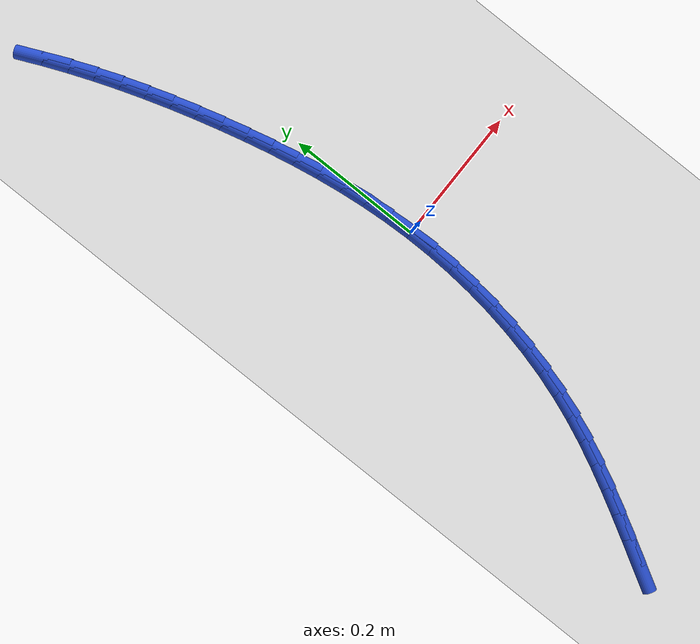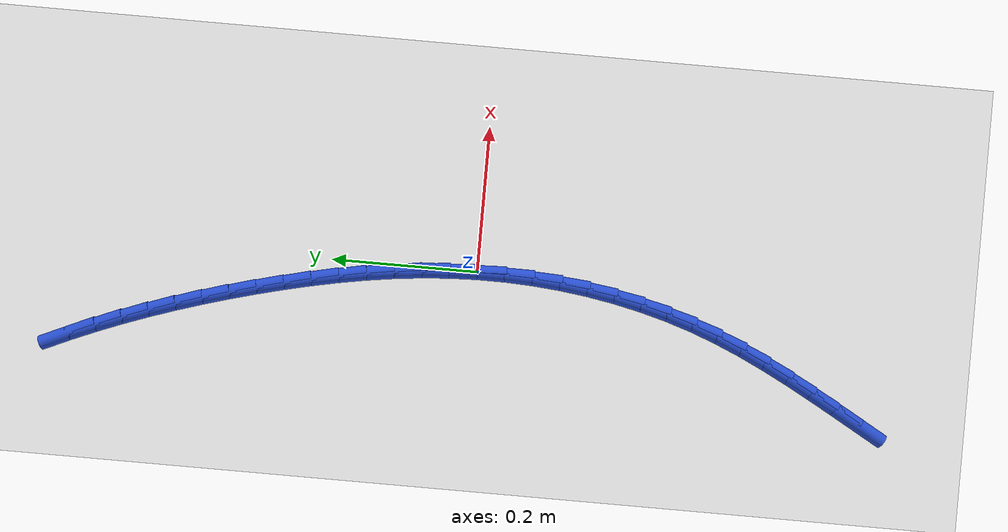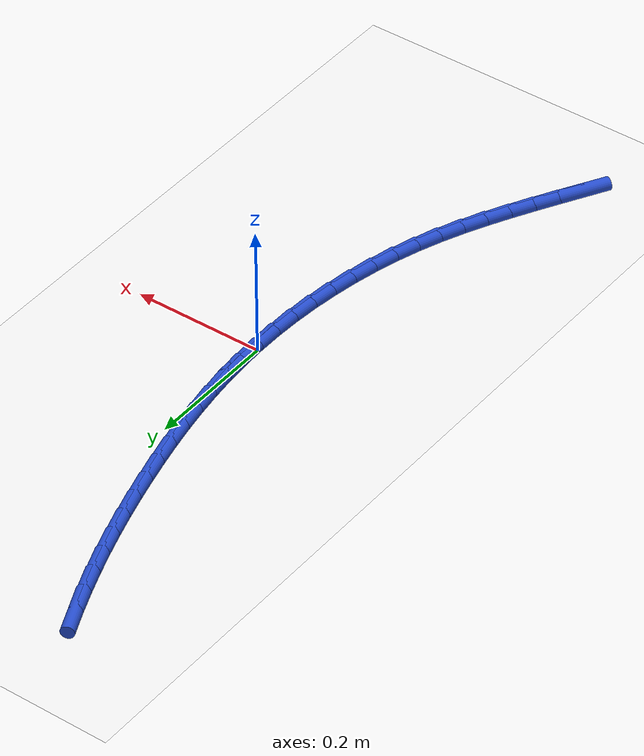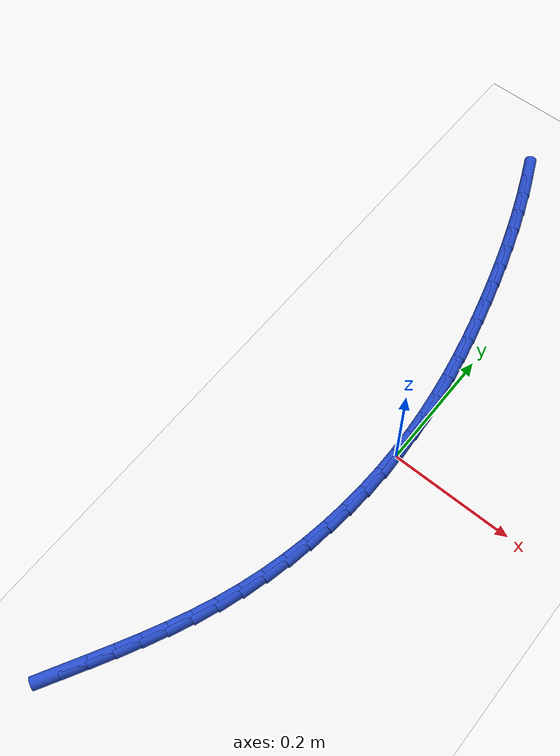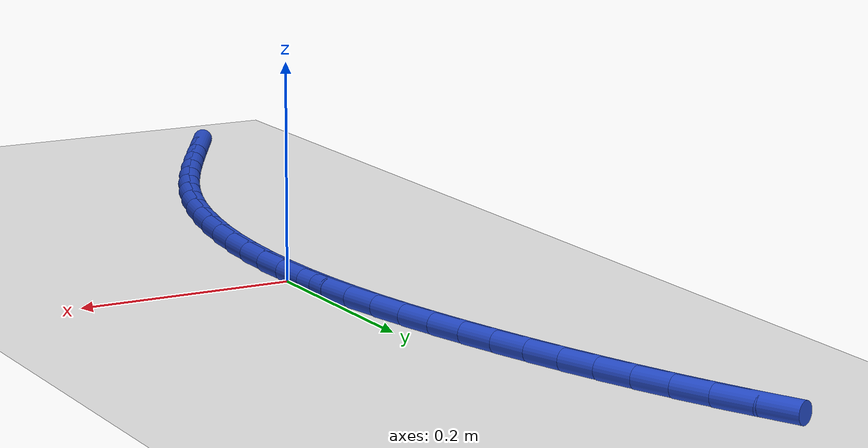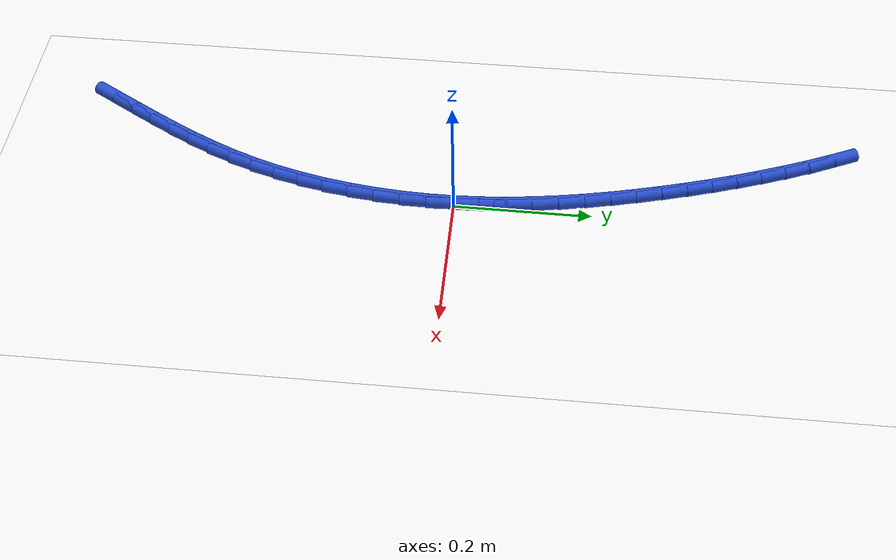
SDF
<sdf version="1.6">
 <world name="default">
  <model name="ground_plane">
   <static>1</static>
   <link name="link">
    <collision name="collision">
     <geometry><plane><normal>0 0 1</normal><size>100 100</size></plane></geometry>
     <surface><friction><ode><mu>100</mu><mu2>50</mu2></ode></friction></surface>
    </collision>
    <visual name="visual">
     <cast_shadows>0</cast_shadows>
     <geometry><plane><normal>0 0 1</normal><size>100 100</size></plane></geometry>
     <material>
      <script><uri>file://media/materials/scripts/gazebo.material</uri><name>Gazebo/WhiteGlow</name></script>
     </material>
    </visual>
   </link>
  </model>
  <model name="line">
   <link name="link_0">
    <pose>1.6479873021779667e-17 4.163336342344337e-17 0.01 0 1.57 -1.5317288120726327</pose>
    <collision name="collision">
     <geometry><cylinder><radius>0.01</radius><length>0.08</length></cylinder></geometry>
    </collision>
    <visual name="visual">
     <material>
      <script><name>Gazebo/Blue</name><uri>file://media/materials/scripts/gazebo.material</uri></script>
     </material>
     <geometry><cylinder><radius>0.01</radius><length>0.08</length></cylinder></geometry>
    </visual>
   </link>
   <link name="link_1">
    <pose>-0.0014899844834011112 0.03811930134167298 0.01 0 1.57 -1.4931282186608994</pose>
    <collision name="collision">
     <geometry><cylinder><radius>0.01</radius><length>0.08</length></cylinder></geometry>
    </collision>
    <visual name="visual">
     <material>
      <script><name>Gazebo/Blue</name><uri>file://media/materials/scripts/gazebo.material</uri></script>
     </material>
     <geometry><cylinder><radius>0.01</radius><length>0.08</length></cylinder></geometry>
    </visual>
   </link>
   <link name="link_2">
    <pose>-0.004442782700830832 0.07606098006140873 0.01 0 1.57 -1.4574138592589685</pose>
    <collision name="collision">
     <geometry><cylinder><radius>0.01</radius><length>0.08</length></cylinder></geometry>
    </collision>
    <visual name="visual">
     <material>
      <script><name>Gazebo/Blue</name><uri>file://media/materials/scripts/gazebo.material</uri></script>
     </material>
     <geometry><cylinder><radius>0.01</radius><length>0.08</length></cylinder></geometry>
    </visual>
   </link>
   <link name="link_3">
    <pose>-0.008741418622784745 0.11381108126218124 0.01 0 1.57 -1.4246214544214557</pose>
    <collision name="collision">
     <geometry><cylinder><radius>0.01</radius><length>0.08</length></cylinder></geometry>
    </collision>
    <visual name="visual">
     <material>
      <script><name>Gazebo/Blue</name><uri>file://media/materials/scripts/gazebo.material</uri></script>
     </material>
     <geometry><cylinder><radius>0.01</radius><length>0.08</length></cylinder></geometry>
    </visual>
   </link>
   <link name="link_4">
    <pose>-0.014268916219758475 0.1513556500469646 0.01 0 1.57 -1.3947576710390879</pose>
    <collision name="collision">
     <geometry><cylinder><radius>0.01</radius><length>0.08</length></cylinder></geometry>
    </collision>
    <visual name="visual">
     <material>
      <script><name>Gazebo/Blue</name><uri>file://media/materials/scripts/gazebo.material</uri></script>
     </material>
     <geometry><cylinder><radius>0.01</radius><length>0.08</length></cylinder></geometry>
    </visual>
   </link>
   <link name="link_5">
    <pose>-0.020908299462247606 0.18868073151873274 0.01 0 1.57 -1.3678085568128728</pose>
    <collision name="collision">
     <geometry><cylinder><radius>0.01</radius><length>0.08</length></cylinder></geometry>
    </collision>
    <visual name="visual">
     <material>
      <script><name>Gazebo/Blue</name><uri>file://media/materials/scripts/gazebo.material</uri></script>
     </material>
     <geometry><cylinder><radius>0.01</radius><length>0.08</length></cylinder></geometry>
    </visual>
   </link>
   <link name="link_6">
    <pose>-0.028542592320747764 0.2257723707804597 0.01 0 1.57 -1.3437473016160464</pose>
    <collision name="collision">
     <geometry><cylinder><radius>0.01</radius><length>0.08</length></cylinder></geometry>
    </collision>
    <visual name="visual">
     <material>
      <script><name>Gazebo/Blue</name><uri>file://media/materials/scripts/gazebo.material</uri></script>
     </material>
     <geometry><cylinder><radius>0.01</radius><length>0.08</length></cylinder></geometry>
    </visual>
   </link>
   <link name="link_7">
    <pose>-0.037054818765754546 0.2626166129351194 0.01 0 1.57 -1.3225411309745525</pose>
    <collision name="collision">
     <geometry><cylinder><radius>0.01</radius><length>0.08</length></cylinder></geometry>
    </collision>
    <visual name="visual">
     <material>
      <script><name>Gazebo/Blue</name><uri>file://media/materials/scripts/gazebo.material</uri></script>
     </material>
     <geometry><cylinder><radius>0.01</radius><length>0.08</length></cylinder></geometry>
    </visual>
   </link>
   <link name="link_8">
    <pose>-0.046328002767763554 0.29919950308568594 0.01 0 1.57 -1.3038874209098905</pose>
    <collision name="collision">
     <geometry><cylinder><radius>0.01</radius><length>0.08</length></cylinder></geometry>
    </collision>
    <visual name="visual">
     <material>
      <script><name>Gazebo/Blue</name><uri>file://media/materials/scripts/gazebo.material</uri></script>
     </material>
     <geometry><cylinder><radius>0.01</radius><length>0.08</length></cylinder></geometry>
    </visual>
   </link>
   <link name="link_9">
    <pose>-0.05625606618419826 0.33550843181452994 0.01 0 1.57 -1.2852633298243463</pose>
    <collision name="collision">
     <geometry><cylinder><radius>0.01</radius><length>0.08</length></cylinder></geometry>
    </collision>
    <visual name="visual">
     <material>
      <script><name>Gazebo/Blue</name><uri>file://media/materials/scripts/gazebo.material</uri></script>
     </material>
     <geometry><cylinder><radius>0.01</radius><length>0.08</length></cylinder></geometry>
    </visual>
   </link>
   <link name="link_10">
    <pose>-0.06683426181227448 0.37154330026617244 0.01 0 1.57 -1.2653336064454472</pose>
    <collision name="collision">
     <geometry><cylinder><radius>0.01</radius><length>0.08</length></cylinder></geometry>
    </collision>
    <visual name="visual">
     <material>
      <script><name>Gazebo/Blue</name><uri>file://media/materials/scripts/gazebo.material</uri></script>
     </material>
     <geometry><cylinder><radius>0.01</radius><length>0.08</length></cylinder></geometry>
    </visual>
   </link>
   <link name="link_11">
    <pose>-0.078112896978811 0.40731080675010406 0.01 0 1.57 -1.2441290904263362</pose>
    <collision name="collision">
     <geometry><cylinder><radius>0.01</radius><length>0.08</length></cylinder></geometry>
    </collision>
    <visual name="visual">
     <material>
      <script><name>Gazebo/Blue</name><uri>file://media/materials/scripts/gazebo.material</uri></script>
     </material>
     <geometry><cylinder><radius>0.01</radius><length>0.08</length></cylinder></geometry>
    </visual>
   </link>
   <link name="link_12">
    <pose>-0.09014282735369664 0.44281771727557295 0.01 0 1.57 -1.2217051966672394</pose>
    <collision name="collision">
     <geometry><cylinder><radius>0.01</radius><length>0.08</length></cylinder></geometry>
    </collision>
    <visual name="visual">
     <material>
      <script><name>Gazebo/Blue</name><uri>file://media/materials/scripts/gazebo.material</uri></script>
     </material>
     <geometry><cylinder><radius>0.01</radius><length>0.08</length></cylinder></geometry>
    </visual>
   </link>
   <link name="link_13">
    <pose>-0.10297490860682014 0.4780707978518275 0.01 0 1.57 -1.1981286835815574</pose>
    <collision name="collision">
     <geometry><cylinder><radius>0.01</radius><length>0.08</length></cylinder></geometry>
    </collision>
    <visual name="visual">
     <material>
      <script><name>Gazebo/Blue</name><uri>file://media/materials/scripts/gazebo.material</uri></script>
     </material>
     <geometry><cylinder><radius>0.01</radius><length>0.08</length></cylinder></geometry>
    </visual>
   </link>
   <link name="link_14">
    <pose>-0.11665999640807029 0.5130768144881156 0.01 0 1.57 -1.1734777234963374</pose>
    <collision name="collision">
     <geometry><cylinder><radius>0.01</radius><length>0.08</length></cylinder></geometry>
    </collision>
    <visual name="visual">
     <material>
      <script><name>Gazebo/Blue</name><uri>file://media/materials/scripts/gazebo.material</uri></script>
     </material>
     <geometry><cylinder><radius>0.01</radius><length>0.08</length></cylinder></geometry>
    </visual>
   </link>
   <link name="link_15">
    <pose>-0.1312489464273358 0.5478425331936855 0.01 0 1.57 -1.147841650049137</pose>
    <collision name="collision">
     <geometry><cylinder><radius>0.01</radius><length>0.08</length></cylinder></geometry>
    </collision>
    <visual name="visual">
     <material>
      <script><name>Gazebo/Blue</name><uri>file://media/materials/scripts/gazebo.material</uri></script>
     </material>
     <geometry><cylinder><radius>0.01</radius><length>0.08</length></cylinder></geometry>
    </visual>
   </link>
   <link name="link_185">
    <pose>-0.1612719061426724 -0.5349358321028415 0.01 0 1.57 1.0556504992546014</pose>
    <collision name="collision">
     <geometry><cylinder><radius>0.01</radius><length>0.08</length></cylinder></geometry>
    </collision>
    <visual name="visual">
     <material>
      <script><name>Gazebo/Blue</name><uri>file://media/materials/scripts/gazebo.material</uri></script>
     </material>
     <geometry><cylinder><radius>0.01</radius><length>0.08</length></cylinder></geometry>
    </visual>
   </link>
   <link name="link_186">
    <pose>-0.14227487619664694 -0.501380127705681 0.01 0 1.57 1.0621624174267361</pose>
    <collision name="collision">
     <geometry><cylinder><radius>0.01</radius><length>0.08</length></cylinder></geometry>
    </collision>
    <visual name="visual">
     <material>
      <script><name>Gazebo/Blue</name><uri>file://media/materials/scripts/gazebo.material</uri></script>
     </material>
     <geometry><cylinder><radius>0.01</radius><length>0.08</length></cylinder></geometry>
    </visual>
   </link>
   <link name="link_187">
    <pose>-0.12375991714589615 -0.4681734038533018 0.01 0 1.57 1.0765092740378432</pose>
    <collision name="collision">
     <geometry><cylinder><radius>0.01</radius><length>0.08</length></cylinder></geometry>
    </collision>
    <visual name="visual">
     <material>
      <script><name>Gazebo/Blue</name><uri>file://media/materials/scripts/gazebo.material</uri></script>
     </material>
     <geometry><cylinder><radius>0.01</radius><length>0.08</length></cylinder></geometry>
    </visual>
   </link>
   <link name="link_188">
    <pose>-0.1059319992859088 -0.4350918142262018 0.01 0 1.57 1.0988471077741886</pose>
    <collision name="collision">
     <geometry><cylinder><radius>0.01</radius><length>0.08</length></cylinder></geometry>
    </collision>
    <visual name="visual">
     <material>
      <script><name>Gazebo/Blue</name><uri>file://media/materials/scripts/gazebo.material</uri></script>
     </material>
     <geometry><cylinder><radius>0.01</radius><length>0.08</length></cylinder></geometry>
    </visual>
   </link>
   <link name="link_189">
    <pose>-0.0889960929121735 -0.40191151250487805 0.01 0 1.57 1.12917447238186</pose>
    <collision name="collision">
     <geometry><cylinder><radius>0.01</radius><length>0.08</length></cylinder></geometry>
    </collision>
    <visual name="visual">
     <material>
      <script><name>Gazebo/Blue</name><uri>file://media/materials/scripts/gazebo.material</uri></script>
     </material>
     <geometry><cylinder><radius>0.01</radius><length>0.08</length></cylinder></geometry>
    </visual>
   </link>
   <link name="link_190">
    <pose>-0.07315716832017902 -0.368408652369828 0.01 0 1.57 1.1672841425390876</pose>
    <collision name="collision">
     <geometry><cylinder><radius>0.01</radius><length>0.08</length></cylinder></geometry>
    </collision>
    <visual name="visual">
     <material>
      <script><name>Gazebo/Blue</name><uri>file://media/materials/scripts/gazebo.material</uri></script>
     </material>
     <geometry><cylinder><radius>0.01</radius><length>0.08</length></cylinder></geometry>
    </visual>
   </link>
   <link name="link_191">
    <pose>-0.05862019580541409 -0.3343593875015491 0.01 0 1.57 1.2126837981924719</pose>
    <collision name="collision">
     <geometry><cylinder><radius>0.01</radius><length>0.08</length></cylinder></geometry>
    </collision>
    <visual name="visual">
     <material>
      <script><name>Gazebo/Blue</name><uri>file://media/materials/scripts/gazebo.material</uri></script>
     </material>
     <geometry><cylinder><radius>0.01</radius><length>0.08</length></cylinder></geometry>
    </visual>
   </link>
   <link name="link_192">
    <pose>-0.04558944562359974 -0.2995410365067054 0.01 0 1.57 1.2618882306818107</pose>
    <collision name="collision">
     <geometry><cylinder><radius>0.01</radius><length>0.08</length></cylinder></geometry>
    </collision>
    <visual name="visual">
     <material>
      <script><name>Gazebo/Blue</name><uri>file://media/materials/scripts/gazebo.material</uri></script>
     </material>
     <geometry><cylinder><radius>0.01</radius><length>0.08</length></cylinder></geometry>
    </visual>
   </link>
   <link name="link_193">
    <pose>-0.03419890290744284 -0.26384787845998514 0.01 0 1.57 1.3095930188002984</pose>
    <collision name="collision">
     <geometry><cylinder><radius>0.01</radius><length>0.08</length></cylinder></geometry>
    </collision>
    <visual name="visual">
     <material>
      <script><name>Gazebo/Blue</name><uri>file://media/materials/scripts/gazebo.material</uri></script>
     </material>
     <geometry><cylinder><radius>0.01</radius><length>0.08</length></cylinder></geometry>
    </visual>
   </link>
   <link name="link_194">
    <pose>-0.024453189091155514 -0.22738946471665333 0.01 0 1.57 1.3555279775525277</pose>
    <collision name="collision">
     <geometry><cylinder><radius>0.01</radius><length>0.08</length></cylinder></geometry>
    </collision>
    <visual name="visual">
     <material>
      <script><name>Gazebo/Blue</name><uri>file://media/materials/scripts/gazebo.material</uri></script>
     </material>
     <geometry><cylinder><radius>0.01</radius><length>0.08</length></cylinder></geometry>
    </visual>
   </link>
   <link name="link_195">
    <pose>-0.016343012869546817 -0.19029849862264156 0.01 0 1.57 1.3999899449453757</pose>
    <collision name="collision">
     <geometry><cylinder><radius>0.01</radius><length>0.08</length></cylinder></geometry>
    </collision>
    <visual name="visual">
     <material>
      <script><name>Gazebo/Blue</name><uri>file://media/materials/scripts/gazebo.material</uri></script>
     </material>
     <geometry><cylinder><radius>0.01</radius><length>0.08</length></cylinder></geometry>
    </visual>
   </link>
   <link name="link_196">
    <pose>-0.009859082937425821 -0.15270768352388184 0.01 0 1.57 1.443272002017544</pose>
    <collision name="collision">
     <geometry><cylinder><radius>0.01</radius><length>0.08</length></cylinder></geometry>
    </collision>
    <visual name="visual">
     <material>
      <script><name>Gazebo/Blue</name><uri>file://media/materials/scripts/gazebo.material</uri></script>
     </material>
     <geometry><cylinder><radius>0.01</radius><length>0.08</length></cylinder></geometry>
    </visual>
   </link>
   <link name="link_197">
    <pose>-0.004992107989601583 -0.114749722766306 0.01 0 1.57 1.4856633393179786</pose>
    <collision name="collision">
     <geometry><cylinder><radius>0.01</radius><length>0.08</length></cylinder></geometry>
    </collision>
    <visual name="visual">
     <material>
      <script><name>Gazebo/Blue</name><uri>file://media/materials/scripts/gazebo.material</uri></script>
     </material>
     <geometry><cylinder><radius>0.01</radius><length>0.08</length></cylinder></geometry>
    </visual>
   </link>
   <link name="link_198">
    <pose>-0.0017327967208831591 -0.0765573196958459 0.01 0 1.57 1.5274503098124474</pose>
    <collision name="collision">
     <geometry><cylinder><radius>0.01</radius><length>0.08</length></cylinder></geometry>
    </collision>
    <visual name="visual">
     <material>
      <script><name>Gazebo/Blue</name><uri>file://media/materials/scripts/gazebo.material</uri></script>
     </material>
     <geometry><cylinder><radius>0.01</radius><length>0.08</length></cylinder></geometry>
    </visual>
   </link>
   <link name="link_199">
    <pose>-7.185782607960819e-05 -0.03826317765843327 0.01 0 1.57 1.5689183400201394</pose>
    <collision name="collision">
     <geometry><cylinder><radius>0.01</radius><length>0.08</length></cylinder></geometry>
    </collision>
    <visual name="visual">
     <material>
      <script><name>Gazebo/Blue</name><uri>file://media/materials/scripts/gazebo.material</uri></script>
     </material>
     <geometry><cylinder><radius>0.01</radius><length>0.08</length></cylinder></geometry>
    </visual>
   </link>
   <link name="link_200">
    <pose>1.3877787807814457e-17 -5.551115123125783e-17 0.01 0 1.57 -1.531238198676043</pose>
    <collision name="collision">
     <geometry><cylinder><radius>0.01</radius><length>0.08</length></cylinder></geometry>
    </collision>
    <visual name="visual">
     <material>
      <script><name>Gazebo/Blue</name><uri>file://media/materials/scripts/gazebo.material</uri></script>
     </material>
     <geometry><cylinder><radius>0.01</radius><length>0.08</length></cylinder></geometry>
    </visual>
   </link>
   <link name="link_201">
    <pose>-0.0015079319374534036 0.03809950993352278 0.01 0 1.57 -1.5312381986760428</pose>
    <collision name="collision">
     <geometry><cylinder><radius>0.01</radius><length>0.08</length></cylinder></geometry>
    </collision>
    <visual name="visual">
     <material>
      <script><name>Gazebo/Blue</name><uri>file://media/materials/scripts/gazebo.material</uri></script>
     </material>
     <geometry><cylinder><radius>0.01</radius><length>0.08</length></cylinder></geometry>
    </visual>
   </link>
  </model>
 </world>
</sdf>
